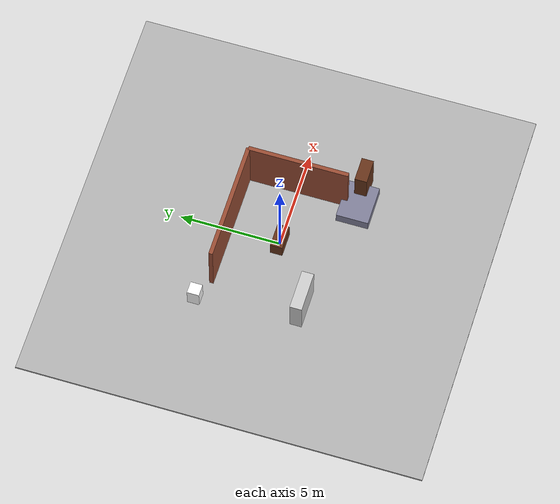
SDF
<?xml version="1.0"?>
<sdf version="1.6">
  <world name="realistic_house">

    <!-- Physics -->
    <physics type="ode">
      <max_step_size>0.002</max_step_size>
      <real_time_factor>1</real_time_factor>
    </physics>

    <!-- ================= GROUND ================= -->
    <model name="ground">
      <static>true</static>
      <link name="link">
        <collision name="ground_collision">
          <geometry>
            <box><size>20 20 0.1</size></box>
          </geometry>
        </collision>
        <visual name="ground_visual">
          <geometry>
            <box><size>20 20 0.1</size></box>
          </geometry>
          <material>
            <ambient>0.7 0.7 0.7 1</ambient>
          </material>
        </visual>
      </link>
    </model>

    <!-- ================= HALL WALLS ================= -->

    <model name="hall_wall_1">
      <static>true</static>
      <pose>0 2.5 1.5 0 0 0</pose>
      <link name="link">
        <collision name="hall_wall_1_collision">
          <geometry>
            <box><size>6 0.2 3</size></box>
          </geometry>
        </collision>
        <visual name="hall_wall_1_visual">
          <geometry>
            <box><size>6 0.2 3</size></box>
          </geometry>
          <material>
            <ambient>0.6 0.3 0.2 1</ambient>
          </material>
        </visual>
      </link>
    </model>

    <model name="hall_wall_2">
      <static>true</static>
      <pose>3 0 1.5 0 0 1.57</pose>
      <link name="link">
        <collision name="hall_wall_2_collision">
          <geometry>
            <box><size>5 0.2 3</size></box>
          </geometry>
        </collision>
        <visual name="hall_wall_2_visual">
          <geometry>
            <box><size>5 0.2 3</size></box>
          </geometry>
          <material>
            <ambient>0.6 0.3 0.2 1</ambient>
          </material>
        </visual>
      </link>
    </model>

    <!-- ================= FURNITURE ================= -->

    <model name="hall_table">
      <static>true</static>
      <pose>0 0 0.4 0 0 0</pose>
      <link name="link">
        <collision name="hall_table_collision">
          <geometry>
            <box><size>1.2 0.6 0.8</size></box>
          </geometry>
        </collision>
        <visual name="hall_table_visual">
          <geometry>
            <box><size>1.2 0.6 0.8</size></box>
          </geometry>
          <material>
            <ambient>0.4 0.2 0.1 1</ambient>
          </material>
        </visual>
      </link>
    </model>

    <model name="kitchen_rack">
      <static>true</static>
      <pose>-3 -2 0.9 0 0 0</pose>
      <link name="link">
        <collision name="kitchen_rack_collision">
          <geometry>
            <box><size>2 0.6 1.8</size></box>
          </geometry>
        </collision>
        <visual name="kitchen_rack_visual">
          <geometry>
            <box><size>2 0.6 1.8</size></box>
          </geometry>
          <material>
            <ambient>0.8 0.8 0.8 1</ambient>
          </material>
        </visual>
      </link>
    </model>

    <model name="bed">
      <static>true</static>
      <pose>3 -3 0.3 0 0 0</pose>
      <link name="link">
        <collision name="bed_collision">
          <geometry>
            <box><size>2 1.6 0.6</size></box>
          </geometry>
        </collision>
        <visual name="bed_visual">
          <geometry>
            <box><size>2 1.6 0.6</size></box>
          </geometry>
          <material>
            <ambient>0.5 0.5 0.6 1</ambient>
          </material>
        </visual>
      </link>
    </model>

    <model name="wardrobe">
      <static>true</static>
      <pose>4 -3 1 0 0 0</pose>
      <link name="link">
        <collision name="wardrobe_collision">
          <geometry>
            <box><size>1.2 0.6 2</size></box>
          </geometry>
        </collision>
        <visual name="wardrobe_visual">
          <geometry>
            <box><size>1.2 0.6 2</size></box>
          </geometry>
          <material>
            <ambient>0.4 0.2 0.1 1</ambient>
          </material>
        </visual>
      </link>
    </model>

    <model name="toilet_block">
      <static>true</static>
      <pose>-4 3 0.5 0 0 0</pose>
      <link name="link">
        <collision name="toilet_collision">
          <geometry>
            <box><size>0.6 0.6 1</size></box>
          </geometry>
        </collision>
        <visual name="toilet_visual">
          <geometry>
            <box><size>0.6 0.6 1</size></box>
          </geometry>
          <material>
            <ambient>1 1 1 1</ambient>
          </material>
        </visual>
      </link>
    </model>s

  </world>
</sdf>
